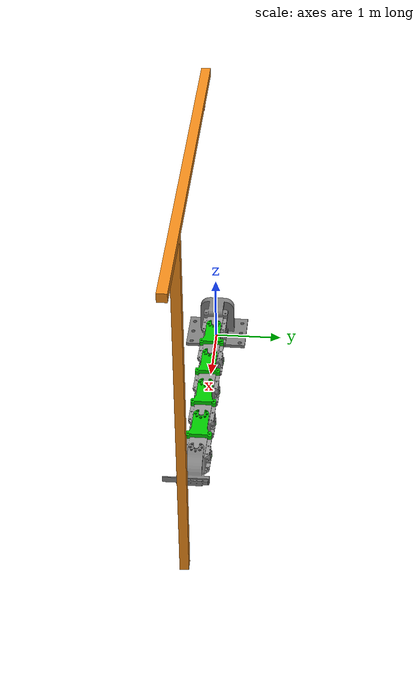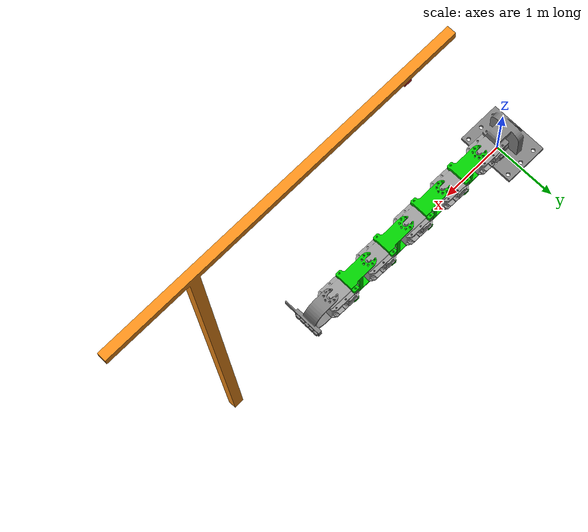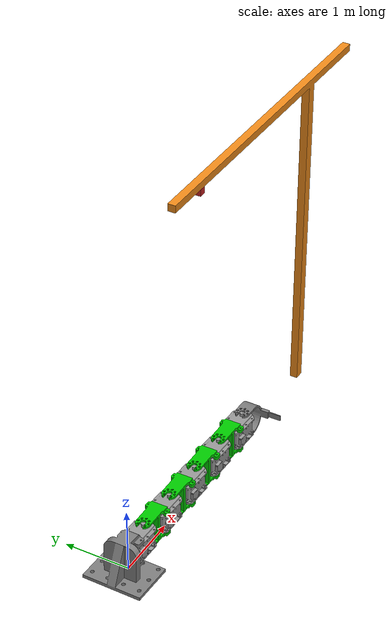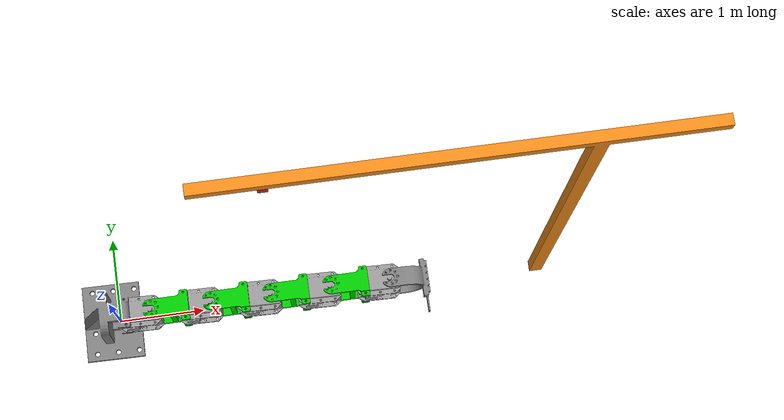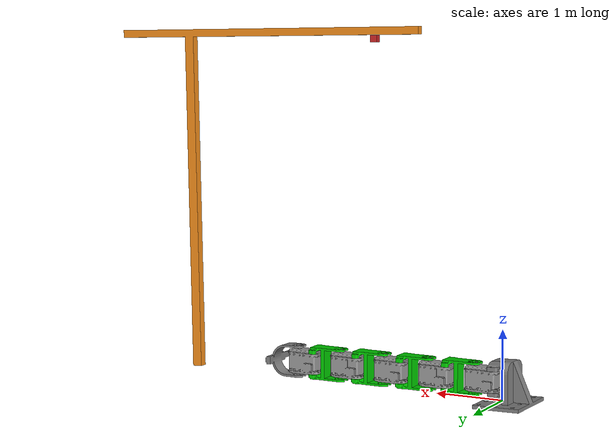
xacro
<?xml version="1.0"?>

<robot xmlns:xacro="http://www.ros.org/wiki/xacro" name="hand_tutorial">

 <xacro:macro name="default_inertial" params="mass">
    <inertial>
      <mass value="${mass}" />
      <inertia ixx="1.0" ixy="0.0" ixz="0.0" iyy="1.0" iyz="0.0" izz="1.0" />
    </inertial>
</xacro:macro>
<link name="world"/>

<link name="base_link">
	<visual>
	<geometry>
	<mesh filename="package://robot_description/meshes/ggwp.stl" />
	</geometry>
	<origin xyz="0 0 -0.05" rpy="0 0 0"/>
  <material name="grey">
    <color rgba="0.5 0.5 0.5 1.0"/>
  </material>
	</visual>
	<collision name="link_collision">
	<geometry>
	<mesh filename ="package://robot_description/meshes/ggwp.stl" />
	</geometry>
	<origin xyz="0 0 -0.05" rpy="0 0 0"/>
	</collision>
	<xacro:default_inertial mass="0.01"/>
</link>

<link name="m2m">
	<visual>
	<geometry>
	<mesh filename="package://robot_description/meshes/short.stl"/>
	</geometry>
	<origin rpy ="0 0 0" xyz="0 0 0"/>
  <material name="green">
    <color rgba="0.0 0.8 0.0 1.0"/>
  </material>
	</visual>
	<collision name="m2m_collision">
	<geometry>
	<mesh filename="package://robot_description/meshes/short.stl"/>
	</geometry>
	<origin rpy ="0 0 0" xyz="0 0 0"/>
	</collision>
	<xacro:default_inertial mass="0.01"/>
</link>

<link name="m2m01">
	<visual>
	<geometry>
	<mesh filename="package://robot_description/meshes/short.stl"/>
	</geometry>
	<origin rpy ="0 0 0" xyz="0 0 0"/>
	  <material name="green">
    <color rgba="0.0 0.8 0.0 1.0"/>
  </material>
	</visual>
	<collision name="m2m_collision01">
	<geometry>
	<mesh filename="package://robot_description/meshes/short.stl"/>
	</geometry>
	<origin rpy ="0 0 0" xyz="0 0 0"/>
	</collision>
	<xacro:default_inertial mass="0.01"/>
</link>

<link name="m2m02">
	<visual>
	<geometry>
	<mesh filename="package://robot_description/meshes/short.stl"/>
	</geometry>
	<origin rpy ="0 0 0" xyz="0 0 0"/>
	  <material name="green">
    <color rgba="0.0 0.8 0.0 1.0"/>
  </material>
	</visual>
	<collision name="m2m_collision01">
	<geometry>
	<mesh filename="package://robot_description/meshes/short.stl"/>
	</geometry>
	<origin rpy ="0 0 0" xyz="0 0 0"/>
	</collision>
	<xacro:default_inertial mass="0.01"/>
</link>

<link name="m2m03">
	<visual>
	<geometry>
	<mesh filename="package://robot_description/meshes/short.stl"/>
	</geometry>
	  <material name="green">
    <color rgba="0.0 0.8 0.0 1.0"/>
  </material>
	<origin rpy ="0 0 0" xyz="0 0 0"/>
	</visual>
	<collision name="m2m_collision01">
	<geometry>
	<mesh filename="package://robot_description/meshes/short.stl"/>
	</geometry>
	<origin rpy ="0 0 0" xyz="0 0 0"/>
	</collision>
	<xacro:default_inertial mass="0.01"/>
</link>

<link name="motor">
	<visual>
	<geometry>
	<mesh filename="package://robot_description/meshes/motor.stl"/>
	</geometry>
	<origin rpy ="0 0 3.14" xyz="0 0 0"/>
	</visual>
	<collision name="motor_collision">
	<geometry>
	<mesh filename="package://robot_description/meshes/motor.stl"/>
	</geometry>
	<origin rpy ="0 0 3.14" xyz="0 0 0"/>
	</collision>
	<xacro:default_inertial mass="0.01"/>
</link>

<link name="motor01">
	<visual>
	<geometry>
	<mesh filename="package://robot_description/meshes/motor.stl"/>
	</geometry>
	<origin rpy ="0 0 3.14" xyz="0 0 0"/>
	</visual>
	<collision name="motor_collision">
	<geometry>
	<mesh filename="package://robot_description/meshes/motor.stl"/>
	</geometry>
	<origin rpy ="0 0 3.14" xyz="0 0 0"/>
	</collision>
	<xacro:default_inertial mass="0.01"/>
</link>

<link name="motor02">
	<visual>
	<geometry>
	<mesh filename="package://robot_description/meshes/motor.stl"/>
	</geometry>
	<origin rpy ="0 0 3.14" xyz="0 0 0"/>
	</visual>
	<collision name="motor_collision">
	<geometry>
	<mesh filename="package://robot_description/meshes/motor.stl"/>
	</geometry>
	<origin rpy ="0 0 3.14" xyz="0 0 0"/>
	</collision>
	<xacro:default_inertial mass="0.01"/>
</link>

<link name="motor03">
	<visual>
	<geometry>
	<mesh filename="package://robot_description/meshes/motor.stl"/>
	</geometry>
	<origin rpy ="0 0 3.14" xyz="0 0 0"/>
	</visual>
	<collision name="motor_collision">
	<geometry>
	<mesh filename="package://robot_description/meshes/motor.stl"/>
	</geometry>
	<origin rpy ="0 0 3.14" xyz="0 0 0"/>
	</collision>
	<xacro:default_inertial mass="0.01"/>
</link>

<link name="motor04">
	<visual>
	<geometry>
	<mesh filename="package://robot_description/meshes/motor.stl"/>
	</geometry>
	<origin rpy ="0 0 3.14" xyz="0 0 0"/>
	</visual>
	<collision name="motor_collision">
	<geometry>
	<mesh filename="package://robot_description/meshes/motor.stl"/>
	</geometry>
	<origin rpy ="0 0 3.14" xyz="0 0 0"/>
	</collision>
	<xacro:default_inertial mass="0.01"/>
</link>

<link name="endeffector">
	<visual>
	<geometry>
	<mesh filename="package://robot_description/meshes/lastend.stl"/>
	</geometry>
	<origin rpy= " 0 0 3.14" xyz ="0 0 0"/>
	  <material name="grey">
    <color rgba="0.5 0.5 0.5 1.0"/>
  </material>
	</visual>
	<collision name="end_collision">
	<geometry>
	<mesh filename="package://robot_description/meshes/lastend.stl"/>
	</geometry>
	<origin rpy="0 0 3.14" xyz="0 0 0"/>
	</collision>
	<xacro:default_inertial mass="0.01"/>
</link>

<link name ="sensor_frame">
	<visual>
	<geometry>
		<box size = "0.01 0.01 0.01"/>
	</geometry>
		<origin rpy= " 0 0 0" xyz ="0 0 0"/>
  </visual>
	<collision>
		<geometry>
			<box size="0.01 0.01 0.01"/>
		</geometry>
	</collision>
</link>

  <link name="balka">
    <visual>
      <geometry>
        <mesh filename="package://robot_description/meshes/balka.stl"/>
      </geometry>
    <origin rpy ="3.14 0 1.57" xyz ="5 0 0"/>
    </visual>

    <xacro:default_inertial mass="0.01"/>
  </link>

  <link name="camera_link">
    <collision>
      <origin xyz="0 0 0" rpy="3.14 1.57 0"/>
      <geometry>
    <box size="0.5 0.5 0.5"/>
      </geometry>
    </collision>

    <visual>
      <origin xyz="0 0 0" rpy="0 0 0"/>
      <geometry>
    <box size="0.1 0.1 0.1"/>
      </geometry>
      <material name="red"/>
    </visual>

    <xacro:default_inertial mass="0.01"/>
  </link>

<joint name="basetoworld" type="fixed">
	<parent link="world"/>
	<child link="base_link"/>
</joint>

<joint name="balkaworld" type="fixed">
  <parent link="world"/>
  <child link="balka"/>
</joint>

<joint name="basetomotor" type="fixed">

	<parent link="base_link"/>
	<child link="motor"/>
	<origin xyz ="0.267 0 0.23"/>
</joint>

<joint name="motortom2m" type="revolute">
	<parent link="motor"/>
	<child link="m2m"/>
	<origin xyz ="0.12 0 -0.178"/>
	<axis xyz = "0 0 1"/>
	<limit effort="1000.0" lower="-2" upper="2" velocity="0.5"/>
</joint>

<joint name="joint1" type="fixed">
	<parent link ="m2m"/>
	<child link ="motor01"/>

	<origin xyz = "0.59 0 0.17"/>
	<limit effort="0" lower = "0.0" upper="0.0" velocity="0.0"/>
</joint>

<joint name="joint2" type="revolute">
	<parent link="motor01"/>
	<child link="m2m01"/>
	<origin xyz ="0.12 0 -0.178"/>
	<axis xyz = "0 0 1"/>
	<limit effort="1000.0" lower="-2" upper="2" velocity="0.5"/>
</joint>

<joint name="joint3" type ="fixed">
	<parent link ="m2m01"/>
	<child link="motor02"/>
	<origin xyz = "0.59 0 0.17"/>
	<limit effort="0" lower = "0.0" upper="0.0" velocity="0.0"/>
</joint>

<joint name="joint4" type="revolute">
	<parent link="motor02"/>
	<child link="m2m02"/>
	<origin xyz ="0.12 0 -0.178"/>
	<axis xyz = "0 0 1"/>
	<limit effort="1000.0" lower="-2" upper="2" velocity="0.5"/>
</joint>

<joint name="joint5" type ="fixed">
	<parent link ="m2m02"/>
	<child link="motor03"/>
	<origin xyz = "0.59 0 0.17"/>
	<limit effort="0" lower = "0.0" upper="0.0" velocity="0.0"/>
</joint>

<joint name="joint6" type="revolute">
	<parent link="motor03"/>
	<child link="m2m03"/>
	<origin xyz ="0.12 0 -0.178"/>
	<axis xyz = "0 0 1"/>
	<limit effort="1000.0" lower="-2" upper="2" velocity="0.5"/>
</joint>

<joint name="joint7" type ="fixed">
	<parent link ="m2m03"/>
	<child link="motor04"/>
	<origin xyz = "0.59 0 0.17"/>
	<limit effort="0" lower = "0.0" upper="0.0" velocity="0.0"/>
</joint>

<joint name="end" type="revolute">
	<parent link="motor04"/>
	<child link ="endeffector"/>
	<origin xyz="0.12 -0.01 -0.178"/>
	<axis xyz = "0 0 1"/>
	<limit effort="1000.0" lower = "-2" upper="2" velocity="0.5"/>
</joint>

<joint name="sensor" type="fixed">
	<parent link ="endeffector"/>
	<child link="sensor_frame"/>
	<origin xyz = "0.48 0.005 0.23"/>
	<limit effort="0" lower = "0.0" upper="0.0" velocity="0.0"/>
</joint>

<joint name="camera_joint" type="fixed">
    <axis xyz="0 1 0" />
    <origin xyz="2 0 5" rpy="0 1.57 0"/>
    <parent link="balka"/>
    <child link="camera_link"/>
  </joint>

<transmission name="tran1">
    <type>transmission_interface/SimpleTransmission</type>
    <joint name="motortom2m">
      <hardwareInterface>hardware_interface/EffortJointInterface</hardwareInterface>
    </joint>
    <actuator name="motor1">
      <hardwareInterface>hardware_interface/EffortJointInterface</hardwareInterface>
      <mechanicalReduction>1</mechanicalReduction>
    </actuator>
  </transmission>

<transmission name="tran2">
    <type>transmission_interface/SimpleTransmission</type>
    <joint name="joint2">
      <hardwareInterface>hardware_interface/EffortJointInterface</hardwareInterface>
    </joint>
    <actuator name="motor2">
      <hardwareInterface>hardware_interface/EffortJointInterface</hardwareInterface>
      <mechanicalReduction>1</mechanicalReduction>
    </actuator>
  </transmission>

<transmission name="tran3">
    <type>transmission_interface/SimpleTransmission</type>
    <joint name="joint4">
      <hardwareInterface>hardware_interface/EffortJointInterface</hardwareInterface>
    </joint>
    <actuator name="motor3">
      <hardwareInterface>hardware_interface/EffortJointInterface</hardwareInterface>
      <mechanicalReduction>1</mechanicalReduction>
    </actuator>
  </transmission>

<transmission name="tran4">
    <type>transmission_interface/SimpleTransmission</type>
    <joint name="joint6">
      <hardwareInterface>hardware_interface/EffortJointInterface</hardwareInterface>
    </joint>
    <actuator name="motor4">
      <hardwareInterface>hardware_interface/EffortJointInterface</hardwareInterface>
      <mechanicalReduction>1</mechanicalReduction>
    </actuator>
  </transmission>

<transmission name="tran4">
    <type>transmission_interface/SimpleTransmission</type>
    <joint name="end">
      <hardwareInterface>hardware_interface/EffortJointInterface</hardwareInterface>
    </joint>
    <actuator name="motor5">
      <hardwareInterface>hardware_interface/EffortJointInterface</hardwareInterface>
      <mechanicalReduction>1</mechanicalReduction>
    </actuator>
  </transmission>

  <gazebo reference="m2m">
         <material>Gazebo/Green</material>
  </gazebo>

  <gazebo reference="m2m01">
         <material>Gazebo/Green</material>
  </gazebo>

  <gazebo reference="m2m02">
         <material>Gazebo/Green</material>
  </gazebo>

  <gazebo reference="m2m03">
         <material>Gazebo/Green</material>
  </gazebo>

  <gazebo reference="base_link">
         <material>Gazebo/Grey</material>
  </gazebo>

  <gazebo reference="motor">
         <material>Gazebo/Grey</material>
  </gazebo>

  <gazebo reference="motor01">
         <material>Gazebo/Grey</material>
  </gazebo>

  <gazebo reference="motor02">
         <material>Gazebo/Grey</material>
  </gazebo>

  <gazebo reference="motor03">
         <material>Gazebo/Grey</material>
  </gazebo>

  <gazebo reference="motor04">
         <material>Gazebo/Grey</material>
  </gazebo>

  <gazebo reference="endeffector">
         <material>Gazebo/Grey</material>
  </gazebo>

  <gazebo reference="camera_link">
         <material>Gazebo/Red</material>
  </gazebo>

  <gazebo reference="balka">
         <material>Gazebo/Orange</material>
  </gazebo>

 <!-- ros_control plugin -->
  <gazebo>
    <plugin name="gazebo_ros_control" filename="libgazebo_ros_control.so">
      <robotNamespace>/robot</robotNamespace>

    </plugin>
  </gazebo>
  <gazebo reference="camera_link">
    <sensor type="camera" name="camera1">
      <update_rate>30.0</update_rate>
      <camera name="head">
        <horizontal_fov>1.3962634</horizontal_fov>
        <image>
          <width>800</width>
          <height>800</height>
          <format>R8G8B8</format>
        </image>
        <clip>
          <near>0.02</near>
          <far>300</far>
        </clip>
        <noise>
          <type>gaussian</type>

          <mean>0.0</mean>
          <stddev>0.007</stddev>
        </noise>
      </camera>
      <plugin name="camera_controller" filename="libgazebo_ros_camera.so">
        <alwaysOn>true</alwaysOn>
        <updateRate>0.0</updateRate>
        <cameraName>robot/camera1</cameraName>
        <imageTopicName>image_raw</imageTopicName>
        <cameraInfoTopicName>camera_info</cameraInfoTopicName>
        <frameName>camera_link</frameName>
        <hackBaseline>0.07</hackBaseline>
        <distortionK1>0.0</distortionK1>
        <distortionK2>0.0</distortionK2>
        <distortionK3>0.0</distortionK3>
        <distortionT1>0.0</distortionT1>
        <distortionT2>0.0</distortionT2>
      </plugin>
    </sensor>
  </gazebo>
</robot>
